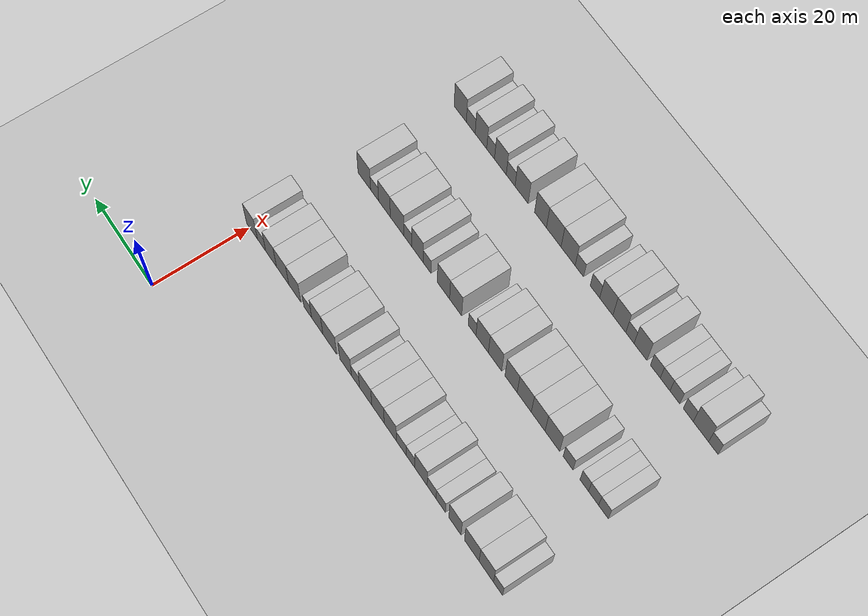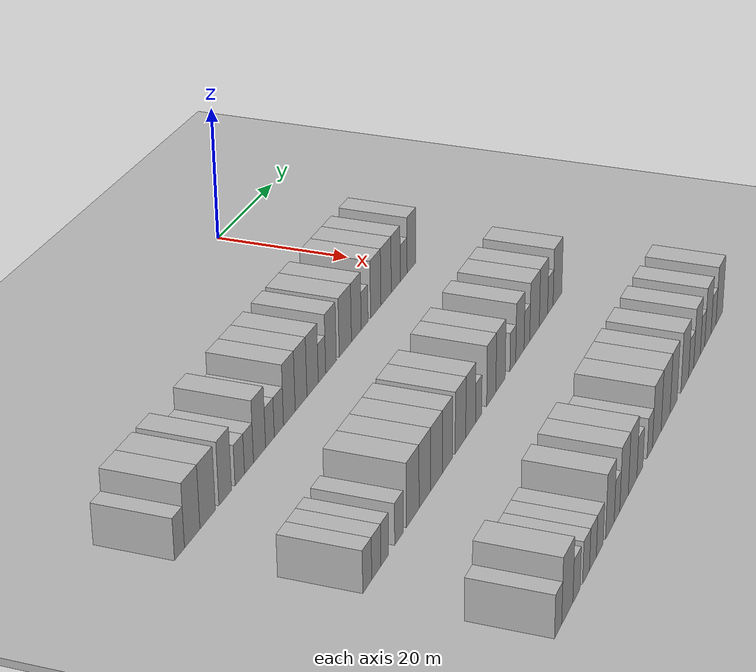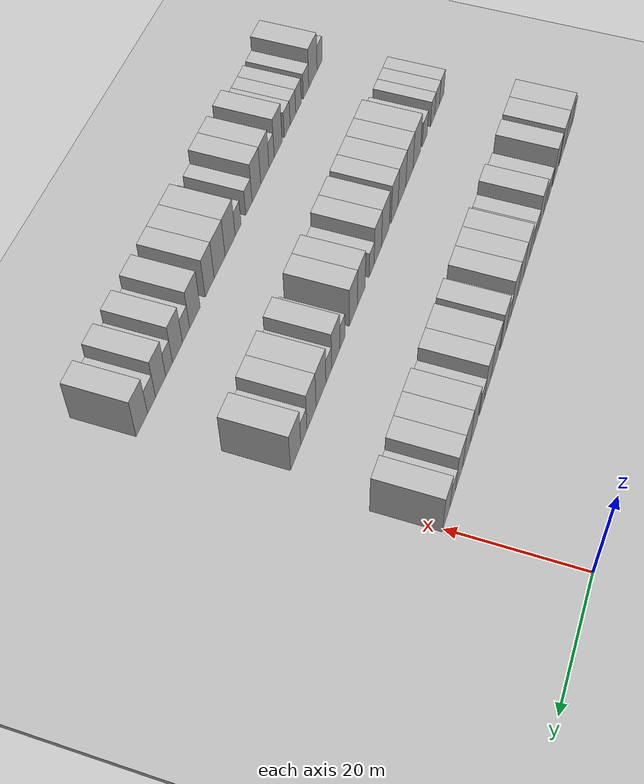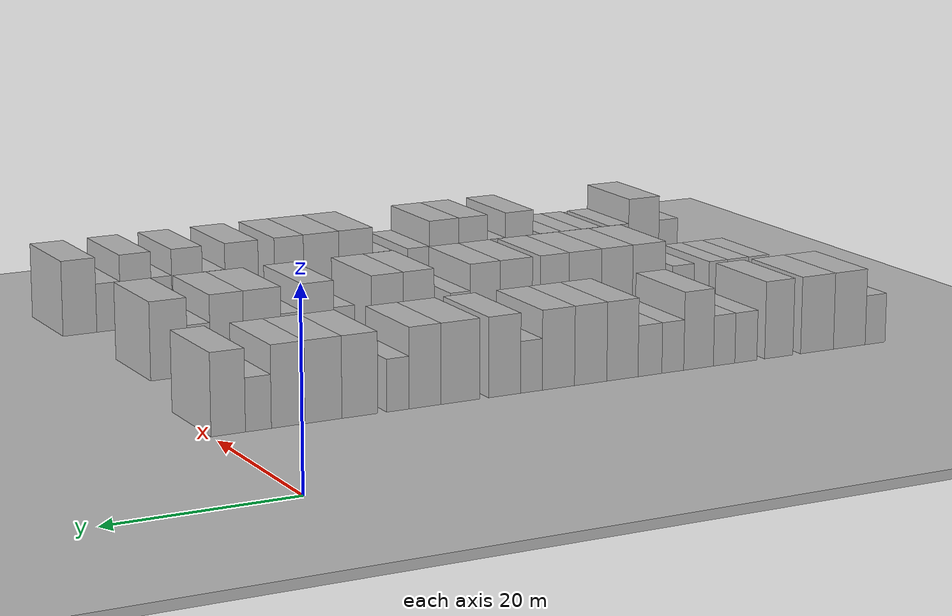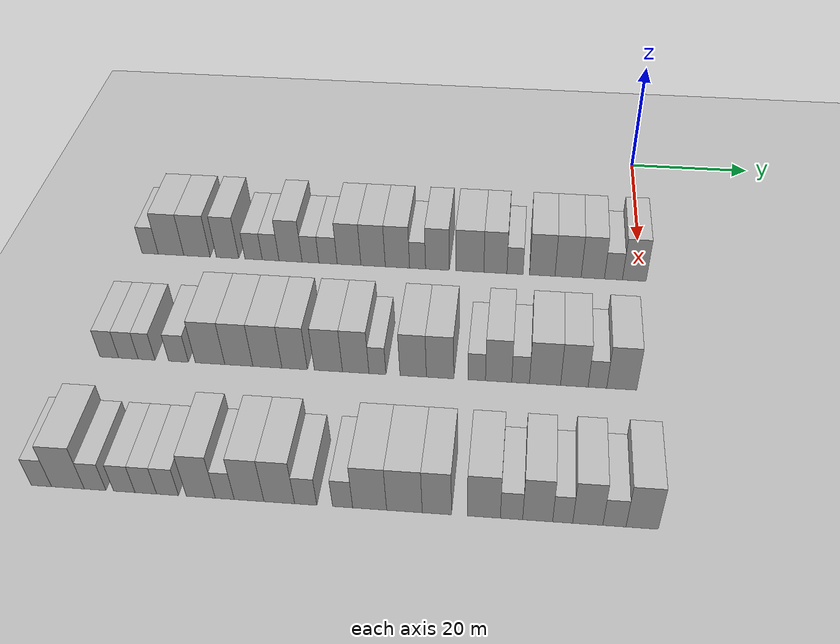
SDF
<sdf version="1.6">
 <world name="default">
  <include><name>ground_plane_1</name><uri>model://HANNAS_ground_plane</uri></include>
  <include>
   <name>ground_plane_2</name>
   <uri>model://HANNAS_ground_plane</uri>
   <pose>100 0 0  0 0 0</pose>
  </include>
  <model name="building_44">
   <static>1</static>
   <pose>25.0000 -78.0380 0 0.000000 0.000000 0.000000</pose>
   <link name="link">
    <pose>0 0 3.00 0 0 0</pose>
    <collision name="collision"><geometry><box><size>10.0000 2.6455 6.0000</size></box></geometry></collision>
    <visual name="visual">
     <cast_shadows>0</cast_shadows>
     <geometry><box><size>10.0000 2.6455 6.0000</size></box></geometry>
     <material>
      <script>
       <uri>model://HANNAS_wall/materials/scripts</uri>
       <uri>model://HANNAS_wall/materials/textures</uri>
       <name>vrc/HANNAS_wall</name>
      </script>
     </material>
    </visual>
   </link>
  </model>
  <model name="building_45">
   <static>1</static>
   <pose>25.0000 -74.6205 0 0.000000 0.000000 0.000000</pose>
   <link name="link">
    <pose>0 0 4.50 0 0 0</pose>
    <collision name="collision"><geometry><box><size>10.0000 4.1895 9.0000</size></box></geometry></collision>
    <visual name="visual">
     <cast_shadows>0</cast_shadows>
     <geometry><box><size>10.0000 4.1895 9.0000</size></box></geometry>
     <material>
      <script>
       <uri>model://HANNAS_wall/materials/scripts</uri>
       <uri>model://HANNAS_wall/materials/textures</uri>
       <name>vrc/HANNAS_wall</name>
      </script>
     </material>
    </visual>
   </link>
  </model>
  <model name="building_46">
   <static>1</static>
   <pose>25.0000 -70.3883 0 0.000000 0.000000 0.000000</pose>
   <link name="link">
    <pose>0 0 4.50 0 0 0</pose>
    <collision name="collision"><geometry><box><size>10.0000 4.2748 9.0000</size></box></geometry></collision>
    <visual name="visual">
     <cast_shadows>0</cast_shadows>
     <geometry><box><size>10.0000 4.2748 9.0000</size></box></geometry>
     <material>
      <script>
       <uri>model://HANNAS_wall/materials/scripts</uri>
       <uri>model://HANNAS_wall/materials/textures</uri>
       <name>vrc/HANNAS_wall</name>
      </script>
     </material>
    </visual>
   </link>
  </model>
  <model name="building_47">
   <static>1</static>
   <pose>25.0000 -65.4378 0 0.000000 0.000000 0.000000</pose>
   <link name="link">
    <pose>0 0 4.50 0 0 0</pose>
    <collision name="collision"><geometry><box><size>10.0000 3.6263 9.0000</size></box></geometry></collision>
    <visual name="visual">
     <cast_shadows>0</cast_shadows>
     <geometry><box><size>10.0000 3.6263 9.0000</size></box></geometry>
     <material>
      <script>
       <uri>model://HANNAS_wall/materials/scripts</uri>
       <uri>model://HANNAS_wall/materials/textures</uri>
       <name>vrc/HANNAS_wall</name>
      </script>
     </material>
    </visual>
   </link>
  </model>
  <model name="building_48">
   <static>1</static>
   <pose>25.0000 -61.2277 0 0.000000 0.000000 0.000000</pose>
   <link name="link">
    <pose>0 0 3.00 0 0 0</pose>
    <collision name="collision"><geometry><box><size>10.0000 2.7939 6.0000</size></box></geometry></collision>
    <visual name="visual">
     <cast_shadows>0</cast_shadows>
     <geometry><box><size>10.0000 2.7939 6.0000</size></box></geometry>
     <material>
      <script>
       <uri>model://HANNAS_wall/materials/scripts</uri>
       <uri>model://HANNAS_wall/materials/textures</uri>
       <name>vrc/HANNAS_wall</name>
      </script>
     </material>
    </visual>
   </link>
  </model>
  <model name="building_49">
   <static>1</static>
   <pose>25.0000 -58.4797 0 0.000000 0.000000 0.000000</pose>
   <link name="link">
    <pose>0 0 3.00 0 0 0</pose>
    <collision name="collision"><geometry><box><size>10.0000 2.7022 6.0000</size></box></geometry></collision>
    <visual name="visual">
     <cast_shadows>0</cast_shadows>
     <geometry><box><size>10.0000 2.7022 6.0000</size></box></geometry>
     <material>
      <script>
       <uri>model://HANNAS_wall/materials/scripts</uri>
       <uri>model://HANNAS_wall/materials/textures</uri>
       <name>vrc/HANNAS_wall</name>
      </script>
     </material>
    </visual>
   </link>
  </model>
  <model name="building_50">
   <static>1</static>
   <pose>25.0000 -55.2761 0 0.000000 0.000000 0.000000</pose>
   <link name="link">
    <pose>0 0 4.50 0 0 0</pose>
    <collision name="collision"><geometry><box><size>10.0000 3.7050 9.0000</size></box></geometry></collision>
    <visual name="visual">
     <cast_shadows>0</cast_shadows>
     <geometry><box><size>10.0000 3.7050 9.0000</size></box></geometry>
     <material>
      <script>
       <uri>model://HANNAS_wall/materials/scripts</uri>
       <uri>model://HANNAS_wall/materials/textures</uri>
       <name>vrc/HANNAS_wall</name>
      </script>
     </material>
    </visual>
   </link>
  </model>
  <model name="building_51">
   <static>1</static>
   <pose>25.0000 -52.0700 0 0.000000 0.000000 0.000000</pose>
   <link name="link">
    <pose>0 0 3.00 0 0 0</pose>
    <collision name="collision"><geometry><box><size>10.0000 2.7071 6.0000</size></box></geometry></collision>
    <visual name="visual">
     <cast_shadows>0</cast_shadows>
     <geometry><box><size>10.0000 2.7071 6.0000</size></box></geometry>
     <material>
      <script>
       <uri>model://HANNAS_wall/materials/scripts</uri>
       <uri>model://HANNAS_wall/materials/textures</uri>
       <name>vrc/HANNAS_wall</name>
      </script>
     </material>
    </visual>
   </link>
  </model>
  <model name="building_52">
   <static>1</static>
   <pose>25.0000 -49.2519 0 0.000000 0.000000 0.000000</pose>
   <link name="link">
    <pose>0 0 3.00 0 0 0</pose>
    <collision name="collision"><geometry><box><size>10.0000 2.9292 6.0000</size></box></geometry></collision>
    <visual name="visual">
     <cast_shadows>0</cast_shadows>
     <geometry><box><size>10.0000 2.9292 6.0000</size></box></geometry>
     <material>
      <script>
       <uri>model://HANNAS_wall/materials/scripts</uri>
       <uri>model://HANNAS_wall/materials/textures</uri>
       <name>vrc/HANNAS_wall</name>
      </script>
     </material>
    </visual>
   </link>
  </model>
  <model name="building_53">
   <static>1</static>
   <pose>25.0000 -45.8936 0 0.000000 0.000000 0.000000</pose>
   <link name="link">
    <pose>0 0 4.50 0 0 0</pose>
    <collision name="collision"><geometry><box><size>10.0000 3.7873 9.0000</size></box></geometry></collision>
    <visual name="visual">
     <cast_shadows>0</cast_shadows>
     <geometry><box><size>10.0000 3.7873 9.0000</size></box></geometry>
     <material>
      <script>
       <uri>model://HANNAS_wall/materials/scripts</uri>
       <uri>model://HANNAS_wall/materials/textures</uri>
       <name>vrc/HANNAS_wall</name>
      </script>
     </material>
    </visual>
   </link>
  </model>
  <model name="building_54">
   <static>1</static>
   <pose>25.0000 -42.0615 0 0.000000 0.000000 0.000000</pose>
   <link name="link">
    <pose>0 0 4.50 0 0 0</pose>
    <collision name="collision"><geometry><box><size>10.0000 3.8770 9.0000</size></box></geometry></collision>
    <visual name="visual">
     <cast_shadows>0</cast_shadows>
     <geometry><box><size>10.0000 3.8770 9.0000</size></box></geometry>
     <material>
      <script>
       <uri>model://HANNAS_wall/materials/scripts</uri>
       <uri>model://HANNAS_wall/materials/textures</uri>
       <name>vrc/HANNAS_wall</name>
      </script>
     </material>
    </visual>
   </link>
  </model>
  <model name="building_55">
   <static>1</static>
   <pose>25.0000 -38.1996 0 0.000000 0.000000 0.000000</pose>
   <link name="link">
    <pose>0 0 4.50 0 0 0</pose>
    <collision name="collision"><geometry><box><size>10.0000 3.8468 9.0000</size></box></geometry></collision>
    <visual name="visual">
     <cast_shadows>0</cast_shadows>
     <geometry><box><size>10.0000 3.8468 9.0000</size></box></geometry>
     <material>
      <script>
       <uri>model://HANNAS_wall/materials/scripts</uri>
       <uri>model://HANNAS_wall/materials/textures</uri>
       <name>vrc/HANNAS_wall</name>
      </script>
     </material>
    </visual>
   </link>
  </model>
  <model name="building_56">
   <static>1</static>
   <pose>25.0000 -35.0085 0 0.000000 0.000000 0.000000</pose>
   <link name="link">
    <pose>0 0 3.00 0 0 0</pose>
    <collision name="collision"><geometry><box><size>10.0000 2.5355 6.0000</size></box></geometry></collision>
    <visual name="visual">
     <cast_shadows>0</cast_shadows>
     <geometry><box><size>10.0000 2.5355 6.0000</size></box></geometry>
     <material>
      <script>
       <uri>model://HANNAS_wall/materials/scripts</uri>
       <uri>model://HANNAS_wall/materials/textures</uri>
       <name>vrc/HANNAS_wall</name>
      </script>
     </material>
    </visual>
   </link>
  </model>
  <model name="building_57">
   <static>1</static>
   <pose>25.0000 -31.8677 0 0.000000 0.000000 0.000000</pose>
   <link name="link">
    <pose>0 0 4.50 0 0 0</pose>
    <collision name="collision"><geometry><box><size>10.0000 3.7459 9.0000</size></box></geometry></collision>
    <visual name="visual">
     <cast_shadows>0</cast_shadows>
     <geometry><box><size>10.0000 3.7459 9.0000</size></box></geometry>
     <material>
      <script>
       <uri>model://HANNAS_wall/materials/scripts</uri>
       <uri>model://HANNAS_wall/materials/textures</uri>
       <name>vrc/HANNAS_wall</name>
      </script>
     </material>
    </visual>
   </link>
  </model>
  <model name="building_58">
   <static>1</static>
   <pose>25.0000 -26.7744 0 0.000000 0.000000 0.000000</pose>
   <link name="link">
    <pose>0 0 4.50 0 0 0</pose>
    <collision name="collision"><geometry><box><size>10.0000 4.4407 9.0000</size></box></geometry></collision>
    <visual name="visual">
     <cast_shadows>0</cast_shadows>
     <geometry><box><size>10.0000 4.4407 9.0000</size></box></geometry>
     <material>
      <script>
       <uri>model://HANNAS_wall/materials/scripts</uri>
       <uri>model://HANNAS_wall/materials/textures</uri>
       <name>vrc/HANNAS_wall</name>
      </script>
     </material>
    </visual>
   </link>
  </model>
  <model name="building_59">
   <static>1</static>
   <pose>25.0000 -22.7452 0 0.000000 0.000000 0.000000</pose>
   <link name="link">
    <pose>0 0 4.50 0 0 0</pose>
    <collision name="collision"><geometry><box><size>10.0000 3.6177 9.0000</size></box></geometry></collision>
    <visual name="visual">
     <cast_shadows>0</cast_shadows>
     <geometry><box><size>10.0000 3.6177 9.0000</size></box></geometry>
     <material>
      <script>
       <uri>model://HANNAS_wall/materials/scripts</uri>
       <uri>model://HANNAS_wall/materials/textures</uri>
       <name>vrc/HANNAS_wall</name>
      </script>
     </material>
    </visual>
   </link>
  </model>
  <model name="building_60">
   <static>1</static>
   <pose>25.0000 -19.6715 0 0.000000 0.000000 0.000000</pose>
   <link name="link">
    <pose>0 0 3.00 0 0 0</pose>
    <collision name="collision"><geometry><box><size>10.0000 2.5298 6.0000</size></box></geometry></collision>
    <visual name="visual">
     <cast_shadows>0</cast_shadows>
     <geometry><box><size>10.0000 2.5298 6.0000</size></box></geometry>
     <material>
      <script>
       <uri>model://HANNAS_wall/materials/scripts</uri>
       <uri>model://HANNAS_wall/materials/textures</uri>
       <name>vrc/HANNAS_wall</name>
      </script>
     </material>
    </visual>
   </link>
  </model>
  <model name="building_61">
   <static>1</static>
   <pose>25.0000 -15.4199 0 0.000000 0.000000 0.000000</pose>
   <link name="link">
    <pose>0 0 4.50 0 0 0</pose>
    <collision name="collision"><geometry><box><size>10.0000 3.9735 9.0000</size></box></geometry></collision>
    <visual name="visual">
     <cast_shadows>0</cast_shadows>
     <geometry><box><size>10.0000 3.9735 9.0000</size></box></geometry>
     <material>
      <script>
       <uri>model://HANNAS_wall/materials/scripts</uri>
       <uri>model://HANNAS_wall/materials/textures</uri>
       <name>vrc/HANNAS_wall</name>
      </script>
     </material>
    </visual>
   </link>
  </model>
  <model name="building_62">
   <static>1</static>
   <pose>25.0000 -11.4006 0 0.000000 0.000000 0.000000</pose>
   <link name="link">
    <pose>0 0 4.50 0 0 0</pose>
    <collision name="collision"><geometry><box><size>10.0000 4.0650 9.0000</size></box></geometry></collision>
    <visual name="visual">
     <cast_shadows>0</cast_shadows>
     <geometry><box><size>10.0000 4.0650 9.0000</size></box></geometry>
     <material>
      <script>
       <uri>model://HANNAS_wall/materials/scripts</uri>
       <uri>model://HANNAS_wall/materials/textures</uri>
       <name>vrc/HANNAS_wall</name>
      </script>
     </material>
    </visual>
   </link>
  </model>
  <model name="building_63">
   <static>1</static>
   <pose>25.0000 -7.5584 0 0.000000 0.000000 0.000000</pose>
   <link name="link">
    <pose>0 0 4.50 0 0 0</pose>
    <collision name="collision"><geometry><box><size>10.0000 3.6194 9.0000</size></box></geometry></collision>
    <visual name="visual">
     <cast_shadows>0</cast_shadows>
     <geometry><box><size>10.0000 3.6194 9.0000</size></box></geometry>
     <material>
      <script>
       <uri>model://HANNAS_wall/materials/scripts</uri>
       <uri>model://HANNAS_wall/materials/textures</uri>
       <name>vrc/HANNAS_wall</name>
      </script>
     </material>
    </visual>
   </link>
  </model>
  <model name="building_64">
   <static>1</static>
   <pose>25.0000 -4.3580 0 0.000000 0.000000 0.000000</pose>
   <link name="link">
    <pose>0 0 3.00 0 0 0</pose>
    <collision name="collision"><geometry><box><size>10.0000 2.7814 6.0000</size></box></geometry></collision>
    <visual name="visual">
     <cast_shadows>0</cast_shadows>
     <geometry><box><size>10.0000 2.7814 6.0000</size></box></geometry>
     <material>
      <script>
       <uri>model://HANNAS_wall/materials/scripts</uri>
       <uri>model://HANNAS_wall/materials/textures</uri>
       <name>vrc/HANNAS_wall</name>
      </script>
     </material>
    </visual>
   </link>
  </model>
  <model name="building_65">
   <static>1</static>
   <pose>25.0000 -1.1376 0 0.000000 0.000000 0.000000</pose>
   <link name="link">
    <pose>0 0 4.50 0 0 0</pose>
    <collision name="collision"><geometry><box><size>10.0000 3.6593 9.0000</size></box></geometry></collision>
    <visual name="visual">
     <cast_shadows>0</cast_shadows>
     <geometry><box><size>10.0000 3.6593 9.0000</size></box></geometry>
     <material>
      <script>
       <uri>model://HANNAS_wall/materials/scripts</uri>
       <uri>model://HANNAS_wall/materials/textures</uri>
       <name>vrc/HANNAS_wall</name>
      </script>
     </material>
    </visual>
   </link>
  </model>
  <model name="building_167">
   <static>1</static>
   <pose>47.0000 -77.1798 0 0.000000 0.000000 0.000000</pose>
   <link name="link">
    <pose>0 0 3.00 0 0 0</pose>
    <collision name="collision"><geometry><box><size>10.0000 2.7575 6.0000</size></box></geometry></collision>
    <visual name="visual">
     <cast_shadows>0</cast_shadows>
     <geometry><box><size>10.0000 2.7575 6.0000</size></box></geometry>
     <material>
      <script>
       <uri>model://HANNAS_wall/materials/scripts</uri>
       <uri>model://HANNAS_wall/materials/textures</uri>
       <name>vrc/HANNAS_wall</name>
      </script>
     </material>
    </visual>
   </link>
  </model>
  <model name="building_168">
   <static>1</static>
   <pose>47.0000 -74.3606 0 0.000000 0.000000 0.000000</pose>
   <link name="link">
    <pose>0 0 3.00 0 0 0</pose>
    <collision name="collision"><geometry><box><size>10.0000 2.8809 6.0000</size></box></geometry></collision>
    <visual name="visual">
     <cast_shadows>0</cast_shadows>
     <geometry><box><size>10.0000 2.8809 6.0000</size></box></geometry>
     <material>
      <script>
       <uri>model://HANNAS_wall/materials/scripts</uri>
       <uri>model://HANNAS_wall/materials/textures</uri>
       <name>vrc/HANNAS_wall</name>
      </script>
     </material>
    </visual>
   </link>
  </model>
  <model name="building_169">
   <static>1</static>
   <pose>47.0000 -71.6887 0 0.000000 0.000000 0.000000</pose>
   <link name="link">
    <pose>0 0 3.00 0 0 0</pose>
    <collision name="collision"><geometry><box><size>10.0000 2.4629 6.0000</size></box></geometry></collision>
    <visual name="visual">
     <cast_shadows>0</cast_shadows>
     <geometry><box><size>10.0000 2.4629 6.0000</size></box></geometry>
     <material>
      <script>
       <uri>model://HANNAS_wall/materials/scripts</uri>
       <uri>model://HANNAS_wall/materials/textures</uri>
       <name>vrc/HANNAS_wall</name>
      </script>
     </material>
    </visual>
   </link>
  </model>
  <model name="building_170">
   <static>1</static>
   <pose>47.0000 -67.0108 0 0.000000 0.000000 0.000000</pose>
   <link name="link">
    <pose>0 0 3.00 0 0 0</pose>
    <collision name="collision"><geometry><box><size>10.0000 2.8929 6.0000</size></box></geometry></collision>
    <visual name="visual">
     <cast_shadows>0</cast_shadows>
     <geometry><box><size>10.0000 2.8929 6.0000</size></box></geometry>
     <material>
      <script>
       <uri>model://HANNAS_wall/materials/scripts</uri>
       <uri>model://HANNAS_wall/materials/textures</uri>
       <name>vrc/HANNAS_wall</name>
      </script>
     </material>
    </visual>
   </link>
  </model>
  <model name="building_171">
   <static>1</static>
   <pose>47.0000 -62.4154 0 0.000000 0.000000 0.000000</pose>
   <link name="link">
    <pose>0 0 4.50 0 0 0</pose>
    <collision name="collision"><geometry><box><size>10.0000 4.2979 9.0000</size></box></geometry></collision>
    <visual name="visual">
     <cast_shadows>0</cast_shadows>
     <geometry><box><size>10.0000 4.2979 9.0000</size></box></geometry>
     <material>
      <script>
       <uri>model://HANNAS_wall/materials/scripts</uri>
       <uri>model://HANNAS_wall/materials/textures</uri>
       <name>vrc/HANNAS_wall</name>
      </script>
     </material>
    </visual>
   </link>
  </model>
  <model name="building_172">
   <static>1</static>
   <pose>47.0000 -58.2314 0 0.000000 0.000000 0.000000</pose>
   <link name="link">
    <pose>0 0 4.50 0 0 0</pose>
    <collision name="collision"><geometry><box><size>10.0000 4.0700 9.0000</size></box></geometry></collision>
    <visual name="visual">
     <cast_shadows>0</cast_shadows>
     <geometry><box><size>10.0000 4.0700 9.0000</size></box></geometry>
     <material>
      <script>
       <uri>model://HANNAS_wall/materials/scripts</uri>
       <uri>model://HANNAS_wall/materials/textures</uri>
       <name>vrc/HANNAS_wall</name>
      </script>
     </material>
    </visual>
   </link>
  </model>
  <model name="building_173">
   <static>1</static>
   <pose>47.0000 -54.0956 0 0.000000 0.000000 0.000000</pose>
   <link name="link">
    <pose>0 0 4.50 0 0 0</pose>
    <collision name="collision"><geometry><box><size>10.0000 4.2016 9.0000</size></box></geometry></collision>
    <visual name="visual">
     <cast_shadows>0</cast_shadows>
     <geometry><box><size>10.0000 4.2016 9.0000</size></box></geometry>
     <material>
      <script>
       <uri>model://HANNAS_wall/materials/scripts</uri>
       <uri>model://HANNAS_wall/materials/textures</uri>
       <name>vrc/HANNAS_wall</name>
      </script>
     </material>
    </visual>
   </link>
  </model>
  <model name="building_174">
   <static>1</static>
   <pose>47.0000 -50.1554 0 0.000000 0.000000 0.000000</pose>
   <link name="link">
    <pose>0 0 4.50 0 0 0</pose>
    <collision name="collision"><geometry><box><size>10.0000 3.6788 9.0000</size></box></geometry></collision>
    <visual name="visual">
     <cast_shadows>0</cast_shadows>
     <geometry><box><size>10.0000 3.6788 9.0000</size></box></geometry>
     <material>
      <script>
       <uri>model://HANNAS_wall/materials/scripts</uri>
       <uri>model://HANNAS_wall/materials/textures</uri>
       <name>vrc/HANNAS_wall</name>
      </script>
     </material>
    </visual>
   </link>
  </model>
  <model name="building_175">
   <static>1</static>
   <pose>47.0000 -45.2948 0 0.000000 0.000000 0.000000</pose>
   <link name="link">
    <pose>0 0 4.50 0 0 0</pose>
    <collision name="collision"><geometry><box><size>10.0000 4.0425 9.0000</size></box></geometry></collision>
    <visual name="visual">
     <cast_shadows>0</cast_shadows>
     <geometry><box><size>10.0000 4.0425 9.0000</size></box></geometry>
     <material>
      <script>
       <uri>model://HANNAS_wall/materials/scripts</uri>
       <uri>model://HANNAS_wall/materials/textures</uri>
       <name>vrc/HANNAS_wall</name>
      </script>
     </material>
    </visual>
   </link>
  </model>
  <model name="building_176">
   <static>1</static>
   <pose>47.0000 -41.3805 0 0.000000 0.000000 0.000000</pose>
   <link name="link">
    <pose>0 0 4.50 0 0 0</pose>
    <collision name="collision"><geometry><box><size>10.0000 3.7861 9.0000</size></box></geometry></collision>
    <visual name="visual">
     <cast_shadows>0</cast_shadows>
     <geometry><box><size>10.0000 3.7861 9.0000</size></box></geometry>
     <material>
      <script>
       <uri>model://HANNAS_wall/materials/scripts</uri>
       <uri>model://HANNAS_wall/materials/textures</uri>
       <name>vrc/HANNAS_wall</name>
      </script>
     </material>
    </visual>
   </link>
  </model>
  <model name="building_177">
   <static>1</static>
   <pose>47.0000 -38.2781 0 0.000000 0.000000 0.000000</pose>
   <link name="link">
    <pose>0 0 3.00 0 0 0</pose>
    <collision name="collision"><geometry><box><size>10.0000 2.4187 6.0000</size></box></geometry></collision>
    <visual name="visual">
     <cast_shadows>0</cast_shadows>
     <geometry><box><size>10.0000 2.4187 6.0000</size></box></geometry>
     <material>
      <script>
       <uri>model://HANNAS_wall/materials/scripts</uri>
       <uri>model://HANNAS_wall/materials/textures</uri>
       <name>vrc/HANNAS_wall</name>
      </script>
     </material>
    </visual>
   </link>
  </model>
  <model name="building_178">
   <static>1</static>
   <pose>47.0000 -33.1904 0 0.000000 0.000000 0.000000</pose>
   <link name="link">
    <pose>0 0 4.50 0 0 0</pose>
    <collision name="collision"><geometry><box><size>10.0000 3.7567 9.0000</size></box></geometry></collision>
    <visual name="visual">
     <cast_shadows>0</cast_shadows>
     <geometry><box><size>10.0000 3.7567 9.0000</size></box></geometry>
     <material>
      <script>
       <uri>model://HANNAS_wall/materials/scripts</uri>
       <uri>model://HANNAS_wall/materials/textures</uri>
       <name>vrc/HANNAS_wall</name>
      </script>
     </material>
    </visual>
   </link>
  </model>
  <model name="building_179">
   <static>1</static>
   <pose>47.0000 -29.3742 0 0.000000 0.000000 0.000000</pose>
   <link name="link">
    <pose>0 0 4.50 0 0 0</pose>
    <collision name="collision"><geometry><box><size>10.0000 3.8758 9.0000</size></box></geometry></collision>
    <visual name="visual">
     <cast_shadows>0</cast_shadows>
     <geometry><box><size>10.0000 3.8758 9.0000</size></box></geometry>
     <material>
      <script>
       <uri>model://HANNAS_wall/materials/scripts</uri>
       <uri>model://HANNAS_wall/materials/textures</uri>
       <name>vrc/HANNAS_wall</name>
      </script>
     </material>
    </visual>
   </link>
  </model>
  <model name="building_180">
   <static>1</static>
   <pose>47.0000 -24.1978 0 0.000000 0.000000 0.000000</pose>
   <link name="link">
    <pose>0 0 3.00 0 0 0</pose>
    <collision name="collision"><geometry><box><size>10.0000 2.4769 6.0000</size></box></geometry></collision>
    <visual name="visual">
     <cast_shadows>0</cast_shadows>
     <geometry><box><size>10.0000 2.4769 6.0000</size></box></geometry>
     <material>
      <script>
       <uri>model://HANNAS_wall/materials/scripts</uri>
       <uri>model://HANNAS_wall/materials/textures</uri>
       <name>vrc/HANNAS_wall</name>
      </script>
     </material>
    </visual>
   </link>
  </model>
  <model name="building_181">
   <static>1</static>
   <pose>47.0000 -21.1114 0 0.000000 0.000000 0.000000</pose>
   <link name="link">
    <pose>0 0 4.50 0 0 0</pose>
    <collision name="collision"><geometry><box><size>10.0000 3.6960 9.0000</size></box></geometry></collision>
    <visual name="visual">
     <cast_shadows>0</cast_shadows>
     <geometry><box><size>10.0000 3.6960 9.0000</size></box></geometry>
     <material>
      <script>
       <uri>model://HANNAS_wall/materials/scripts</uri>
       <uri>model://HANNAS_wall/materials/textures</uri>
       <name>vrc/HANNAS_wall</name>
      </script>
     </material>
    </visual>
   </link>
  </model>
  <model name="building_182">
   <static>1</static>
   <pose>47.0000 -18.0186 0 0.000000 0.000000 0.000000</pose>
   <link name="link">
    <pose>0 0 3.00 0 0 0</pose>
    <collision name="collision"><geometry><box><size>10.0000 2.4895 6.0000</size></box></geometry></collision>
    <visual name="visual">
     <cast_shadows>0</cast_shadows>
     <geometry><box><size>10.0000 2.4895 6.0000</size></box></geometry>
     <material>
      <script>
       <uri>model://HANNAS_wall/materials/scripts</uri>
       <uri>model://HANNAS_wall/materials/textures</uri>
       <name>vrc/HANNAS_wall</name>
      </script>
     </material>
    </visual>
   </link>
  </model>
  <model name="building_183">
   <static>1</static>
   <pose>47.0000 -14.5988 0 0.000000 0.000000 0.000000</pose>
   <link name="link">
    <pose>0 0 4.50 0 0 0</pose>
    <collision name="collision"><geometry><box><size>10.0000 4.3502 9.0000</size></box></geometry></collision>
    <visual name="visual">
     <cast_shadows>0</cast_shadows>
     <geometry><box><size>10.0000 4.3502 9.0000</size></box></geometry>
     <material>
      <script>
       <uri>model://HANNAS_wall/materials/scripts</uri>
       <uri>model://HANNAS_wall/materials/textures</uri>
       <name>vrc/HANNAS_wall</name>
      </script>
     </material>
    </visual>
   </link>
  </model>
  <model name="building_184">
   <static>1</static>
   <pose>47.0000 -10.5033 0 0.000000 0.000000 0.000000</pose>
   <link name="link">
    <pose>0 0 4.50 0 0 0</pose>
    <collision name="collision"><geometry><box><size>10.0000 3.8408 9.0000</size></box></geometry></collision>
    <visual name="visual">
     <cast_shadows>0</cast_shadows>
     <geometry><box><size>10.0000 3.8408 9.0000</size></box></geometry>
     <material>
      <script>
       <uri>model://HANNAS_wall/materials/scripts</uri>
       <uri>model://HANNAS_wall/materials/textures</uri>
       <name>vrc/HANNAS_wall</name>
      </script>
     </material>
    </visual>
   </link>
  </model>
  <model name="building_185">
   <static>1</static>
   <pose>47.0000 -7.2869 0 0.000000 0.000000 0.000000</pose>
   <link name="link">
    <pose>0 0 3.00 0 0 0</pose>
    <collision name="collision"><geometry><box><size>10.0000 2.5918 6.0000</size></box></geometry></collision>
    <visual name="visual">
     <cast_shadows>0</cast_shadows>
     <geometry><box><size>10.0000 2.5918 6.0000</size></box></geometry>
     <material>
      <script>
       <uri>model://HANNAS_wall/materials/scripts</uri>
       <uri>model://HANNAS_wall/materials/textures</uri>
       <name>vrc/HANNAS_wall</name>
      </script>
     </material>
    </visual>
   </link>
  </model>
  <model name="building_186">
   <static>1</static>
   <pose>47.0000 -3.9071 0 0.000000 0.000000 0.000000</pose>
   <link name="link">
    <pose>0 0 4.50 0 0 0</pose>
    <collision name="collision"><geometry><box><size>10.0000 4.1678 9.0000</size></box></geometry></collision>
    <visual name="visual">
     <cast_shadows>0</cast_shadows>
     <geometry><box><size>10.0000 4.1678 9.0000</size></box></geometry>
     <material>
      <script>
       <uri>model://HANNAS_wall/materials/scripts</uri>
       <uri>model://HANNAS_wall/materials/textures</uri>
       <name>vrc/HANNAS_wall</name>
      </script>
     </material>
    </visual>
   </link>
  </model>
  <model name="building_304">
   <static>1</static>
   <pose>69.0000 -78.5191 0 0.000000 0.000000 0.000000</pose>
   <link name="link">
    <pose>0 0 3.00 0 0 0</pose>
    <collision name="collision"><geometry><box><size>10.0000 2.6510 6.0000</size></box></geometry></collision>
    <visual name="visual">
     <cast_shadows>0</cast_shadows>
     <geometry><box><size>10.0000 2.6510 6.0000</size></box></geometry>
     <material>
      <script>
       <uri>model://HANNAS_wall/materials/scripts</uri>
       <uri>model://HANNAS_wall/materials/textures</uri>
       <name>vrc/HANNAS_wall</name>
      </script>
     </material>
    </visual>
   </link>
  </model>
  <model name="building_305">
   <static>1</static>
   <pose>69.0000 -75.0411 0 0.000000 0.000000 0.000000</pose>
   <link name="link">
    <pose>0 0 4.50 0 0 0</pose>
    <collision name="collision"><geometry><box><size>10.0000 4.3049 9.0000</size></box></geometry></collision>
    <visual name="visual">
     <cast_shadows>0</cast_shadows>
     <geometry><box><size>10.0000 4.3049 9.0000</size></box></geometry>
     <material>
      <script>
       <uri>model://HANNAS_wall/materials/scripts</uri>
       <uri>model://HANNAS_wall/materials/textures</uri>
       <name>vrc/HANNAS_wall</name>
      </script>
     </material>
    </visual>
   </link>
  </model>
  <model name="building_306">
   <static>1</static>
   <pose>69.0000 -71.4764 0 0.000000 0.000000 0.000000</pose>
   <link name="link">
    <pose>0 0 3.00 0 0 0</pose>
    <collision name="collision"><geometry><box><size>10.0000 2.8246 6.0000</size></box></geometry></collision>
    <visual name="visual">
     <cast_shadows>0</cast_shadows>
     <geometry><box><size>10.0000 2.8246 6.0000</size></box></geometry>
     <material>
      <script>
       <uri>model://HANNAS_wall/materials/scripts</uri>
       <uri>model://HANNAS_wall/materials/textures</uri>
       <name>vrc/HANNAS_wall</name>
      </script>
     </material>
    </visual>
   </link>
  </model>
  <model name="building_307">
   <static>1</static>
   <pose>69.0000 -67.6692 0 0.000000 0.000000 0.000000</pose>
   <link name="link">
    <pose>0 0 3.00 0 0 0</pose>
    <collision name="collision"><geometry><box><size>10.0000 2.7897 6.0000</size></box></geometry></collision>
    <visual name="visual">
     <cast_shadows>0</cast_shadows>
     <geometry><box><size>10.0000 2.7897 6.0000</size></box></geometry>
     <material>
      <script>
       <uri>model://HANNAS_wall/materials/scripts</uri>
       <uri>model://HANNAS_wall/materials/textures</uri>
       <name>vrc/HANNAS_wall</name>
      </script>
     </material>
    </visual>
   </link>
  </model>
  <model name="building_308">
   <static>1</static>
   <pose>69.0000 -64.8729 0 0.000000 0.000000 0.000000</pose>
   <link name="link">
    <pose>0 0 3.00 0 0 0</pose>
    <collision name="collision"><geometry><box><size>10.0000 2.8030 6.0000</size></box></geometry></collision>
    <visual name="visual">
     <cast_shadows>0</cast_shadows>
     <geometry><box><size>10.0000 2.8030 6.0000</size></box></geometry>
     <material>
      <script>
       <uri>model://HANNAS_wall/materials/scripts</uri>
       <uri>model://HANNAS_wall/materials/textures</uri>
       <name>vrc/HANNAS_wall</name>
      </script>
     </material>
    </visual>
   </link>
  </model>
  <model name="building_309">
   <static>1</static>
   <pose>69.0000 -62.0431 0 0.000000 0.000000 0.000000</pose>
   <link name="link">
    <pose>0 0 3.00 0 0 0</pose>
    <collision name="collision"><geometry><box><size>10.0000 2.8564 6.0000</size></box></geometry></collision>
    <visual name="visual">
     <cast_shadows>0</cast_shadows>
     <geometry><box><size>10.0000 2.8564 6.0000</size></box></geometry>
     <material>
      <script>
       <uri>model://HANNAS_wall/materials/scripts</uri>
       <uri>model://HANNAS_wall/materials/textures</uri>
       <name>vrc/HANNAS_wall</name>
      </script>
     </material>
    </visual>
   </link>
  </model>
  <model name="building_310">
   <static>1</static>
   <pose>69.0000 -57.7474 0 0.000000 0.000000 0.000000</pose>
   <link name="link">
    <pose>0 0 4.50 0 0 0</pose>
    <collision name="collision"><geometry><box><size>10.0000 3.7351 9.0000</size></box></geometry></collision>
    <visual name="visual">
     <cast_shadows>0</cast_shadows>
     <geometry><box><size>10.0000 3.7351 9.0000</size></box></geometry>
     <material>
      <script>
       <uri>model://HANNAS_wall/materials/scripts</uri>
       <uri>model://HANNAS_wall/materials/textures</uri>
       <name>vrc/HANNAS_wall</name>
      </script>
     </material>
    </visual>
   </link>
  </model>
  <model name="building_311">
   <static>1</static>
   <pose>69.0000 -54.6616 0 0.000000 0.000000 0.000000</pose>
   <link name="link">
    <pose>0 0 3.00 0 0 0</pose>
    <collision name="collision"><geometry><box><size>10.0000 2.4366 6.0000</size></box></geometry></collision>
    <visual name="visual">
     <cast_shadows>0</cast_shadows>
     <geometry><box><size>10.0000 2.4366 6.0000</size></box></geometry>
     <material>
      <script>
       <uri>model://HANNAS_wall/materials/scripts</uri>
       <uri>model://HANNAS_wall/materials/textures</uri>
       <name>vrc/HANNAS_wall</name>
      </script>
     </material>
    </visual>
   </link>
  </model>
  <model name="building_312">
   <static>1</static>
   <pose>69.0000 -51.5339 0 0.000000 0.000000 0.000000</pose>
   <link name="link">
    <pose>0 0 4.50 0 0 0</pose>
    <collision name="collision"><geometry><box><size>10.0000 3.8188 9.0000</size></box></geometry></collision>
    <visual name="visual">
     <cast_shadows>0</cast_shadows>
     <geometry><box><size>10.0000 3.8188 9.0000</size></box></geometry>
     <material>
      <script>
       <uri>model://HANNAS_wall/materials/scripts</uri>
       <uri>model://HANNAS_wall/materials/textures</uri>
       <name>vrc/HANNAS_wall</name>
      </script>
     </material>
    </visual>
   </link>
  </model>
  <model name="building_313">
   <static>1</static>
   <pose>69.0000 -47.6643 0 0.000000 0.000000 0.000000</pose>
   <link name="link">
    <pose>0 0 4.50 0 0 0</pose>
    <collision name="collision"><geometry><box><size>10.0000 3.9206 9.0000</size></box></geometry></collision>
    <visual name="visual">
     <cast_shadows>0</cast_shadows>
     <geometry><box><size>10.0000 3.9206 9.0000</size></box></geometry>
     <material>
      <script>
       <uri>model://HANNAS_wall/materials/scripts</uri>
       <uri>model://HANNAS_wall/materials/textures</uri>
       <name>vrc/HANNAS_wall</name>
      </script>
     </material>
    </visual>
   </link>
  </model>
  <model name="building_314">
   <static>1</static>
   <pose>69.0000 -44.2865 0 0.000000 0.000000 0.000000</pose>
   <link name="link">
    <pose>0 0 3.00 0 0 0</pose>
    <collision name="collision"><geometry><box><size>10.0000 2.8349 6.0000</size></box></geometry></collision>
    <visual name="visual">
     <cast_shadows>0</cast_shadows>
     <geometry><box><size>10.0000 2.8349 6.0000</size></box></geometry>
     <material>
      <script>
       <uri>model://HANNAS_wall/materials/scripts</uri>
       <uri>model://HANNAS_wall/materials/textures</uri>
       <name>vrc/HANNAS_wall</name>
      </script>
     </material>
    </visual>
   </link>
  </model>
  <model name="building_315">
   <static>1</static>
   <pose>69.0000 -39.5937 0 0.000000 0.000000 0.000000</pose>
   <link name="link">
    <pose>0 0 3.00 0 0 0</pose>
    <collision name="collision"><geometry><box><size>10.0000 2.5509 6.0000</size></box></geometry></collision>
    <visual name="visual">
     <cast_shadows>0</cast_shadows>
     <geometry><box><size>10.0000 2.5509 6.0000</size></box></geometry>
     <material>
      <script>
       <uri>model://HANNAS_wall/materials/scripts</uri>
       <uri>model://HANNAS_wall/materials/textures</uri>
       <name>vrc/HANNAS_wall</name>
      </script>
     </material>
    </visual>
   </link>
  </model>
  <model name="building_316">
   <static>1</static>
   <pose>69.0000 -36.1698 0 0.000000 0.000000 0.000000</pose>
   <link name="link">
    <pose>0 0 4.50 0 0 0</pose>
    <collision name="collision"><geometry><box><size>10.0000 4.2968 9.0000</size></box></geometry></collision>
    <visual name="visual">
     <cast_shadows>0</cast_shadows>
     <geometry><box><size>10.0000 4.2968 9.0000</size></box></geometry>
     <material>
      <script>
       <uri>model://HANNAS_wall/materials/scripts</uri>
       <uri>model://HANNAS_wall/materials/textures</uri>
       <name>vrc/HANNAS_wall</name>
      </script>
     </material>
    </visual>
   </link>
  </model>
  <model name="building_317">
   <static>1</static>
   <pose>69.0000 -31.7784 0 0.000000 0.000000 0.000000</pose>
   <link name="link">
    <pose>0 0 4.50 0 0 0</pose>
    <collision name="collision"><geometry><box><size>10.0000 4.4859 9.0000</size></box></geometry></collision>
    <visual name="visual">
     <cast_shadows>0</cast_shadows>
     <geometry><box><size>10.0000 4.4859 9.0000</size></box></geometry>
     <material>
      <script>
       <uri>model://HANNAS_wall/materials/scripts</uri>
       <uri>model://HANNAS_wall/materials/textures</uri>
       <name>vrc/HANNAS_wall</name>
      </script>
     </material>
    </visual>
   </link>
  </model>
  <model name="building_318">
   <static>1</static>
   <pose>69.0000 -27.7034 0 0.000000 0.000000 0.000000</pose>
   <link name="link">
    <pose>0 0 4.50 0 0 0</pose>
    <collision name="collision"><geometry><box><size>10.0000 3.6642 9.0000</size></box></geometry></collision>
    <visual name="visual">
     <cast_shadows>0</cast_shadows>
     <geometry><box><size>10.0000 3.6642 9.0000</size></box></geometry>
     <material>
      <script>
       <uri>model://HANNAS_wall/materials/scripts</uri>
       <uri>model://HANNAS_wall/materials/textures</uri>
       <name>vrc/HANNAS_wall</name>
      </script>
     </material>
    </visual>
   </link>
  </model>
  <model name="building_319">
   <static>1</static>
   <pose>69.0000 -21.8161 0 0.000000 0.000000 0.000000</pose>
   <link name="link">
    <pose>0 0 4.50 0 0 0</pose>
    <collision name="collision"><geometry><box><size>10.0000 4.1102 9.0000</size></box></geometry></collision>
    <visual name="visual">
     <cast_shadows>0</cast_shadows>
     <geometry><box><size>10.0000 4.1102 9.0000</size></box></geometry>
     <material>
      <script>
       <uri>model://HANNAS_wall/materials/scripts</uri>
       <uri>model://HANNAS_wall/materials/textures</uri>
       <name>vrc/HANNAS_wall</name>
      </script>
     </material>
    </visual>
   </link>
  </model>
  <model name="building_320">
   <static>1</static>
   <pose>69.0000 -18.3743 0 0.000000 0.000000 0.000000</pose>
   <link name="link">
    <pose>0 0 3.00 0 0 0</pose>
    <collision name="collision"><geometry><box><size>10.0000 2.7734 6.0000</size></box></geometry></collision>
    <visual name="visual">
     <cast_shadows>0</cast_shadows>
     <geometry><box><size>10.0000 2.7734 6.0000</size></box></geometry>
     <material>
      <script>
       <uri>model://HANNAS_wall/materials/scripts</uri>
       <uri>model://HANNAS_wall/materials/textures</uri>
       <name>vrc/HANNAS_wall</name>
      </script>
     </material>
    </visual>
   </link>
  </model>
  <model name="building_321">
   <static>1</static>
   <pose>69.0000 -15.1293 0 0.000000 0.000000 0.000000</pose>
   <link name="link">
    <pose>0 0 4.50 0 0 0</pose>
    <collision name="collision"><geometry><box><size>10.0000 3.7167 9.0000</size></box></geometry></collision>
    <visual name="visual">
     <cast_shadows>0</cast_shadows>
     <geometry><box><size>10.0000 3.7167 9.0000</size></box></geometry>
     <material>
      <script>
       <uri>model://HANNAS_wall/materials/scripts</uri>
       <uri>model://HANNAS_wall/materials/textures</uri>
       <name>vrc/HANNAS_wall</name>
      </script>
     </material>
    </visual>
   </link>
  </model>
  <model name="building_322">
   <static>1</static>
   <pose>69.0000 -12.0296 0 0.000000 0.000000 0.000000</pose>
   <link name="link">
    <pose>0 0 3.00 0 0 0</pose>
    <collision name="collision"><geometry><box><size>10.0000 2.4826 6.0000</size></box></geometry></collision>
    <visual name="visual">
     <cast_shadows>0</cast_shadows>
     <geometry><box><size>10.0000 2.4826 6.0000</size></box></geometry>
     <material>
      <script>
       <uri>model://HANNAS_wall/materials/scripts</uri>
       <uri>model://HANNAS_wall/materials/textures</uri>
       <name>vrc/HANNAS_wall</name>
      </script>
     </material>
    </visual>
   </link>
  </model>
  <model name="building_323">
   <static>1</static>
   <pose>69.0000 -8.9274 0 0.000000 0.000000 0.000000</pose>
   <link name="link">
    <pose>0 0 4.50 0 0 0</pose>
    <collision name="collision"><geometry><box><size>10.0000 3.7219 9.0000</size></box></geometry></collision>
    <visual name="visual">
     <cast_shadows>0</cast_shadows>
     <geometry><box><size>10.0000 3.7219 9.0000</size></box></geometry>
     <material>
      <script>
       <uri>model://HANNAS_wall/materials/scripts</uri>
       <uri>model://HANNAS_wall/materials/textures</uri>
       <name>vrc/HANNAS_wall</name>
      </script>
     </material>
    </visual>
   </link>
  </model>
  <model name="building_324">
   <static>1</static>
   <pose>69.0000 -5.6427 0 0.000000 0.000000 0.000000</pose>
   <link name="link">
    <pose>0 0 3.00 0 0 0</pose>
    <collision name="collision"><geometry><box><size>10.0000 2.8475 6.0000</size></box></geometry></collision>
    <visual name="visual">
     <cast_shadows>0</cast_shadows>
     <geometry><box><size>10.0000 2.8475 6.0000</size></box></geometry>
     <material>
      <script>
       <uri>model://HANNAS_wall/materials/scripts</uri>
       <uri>model://HANNAS_wall/materials/textures</uri>
       <name>vrc/HANNAS_wall</name>
      </script>
     </material>
    </visual>
   </link>
  </model>
  <model name="building_325">
   <static>1</static>
   <pose>69.0000 -2.2331 0 0.000000 0.000000 0.000000</pose>
   <link name="link">
    <pose>0 0 4.50 0 0 0</pose>
    <collision name="collision"><geometry><box><size>10.0000 3.9716 9.0000</size></box></geometry></collision>
    <visual name="visual">
     <cast_shadows>0</cast_shadows>
     <geometry><box><size>10.0000 3.9716 9.0000</size></box></geometry>
     <material>
      <script>
       <uri>model://HANNAS_wall/materials/scripts</uri>
       <uri>model://HANNAS_wall/materials/textures</uri>
       <name>vrc/HANNAS_wall</name>
      </script>
     </material>
    </visual>
   </link>
  </model>
 </world>
</sdf>
